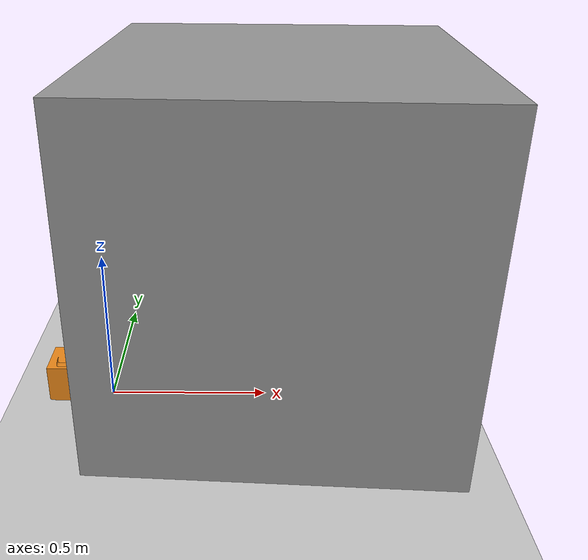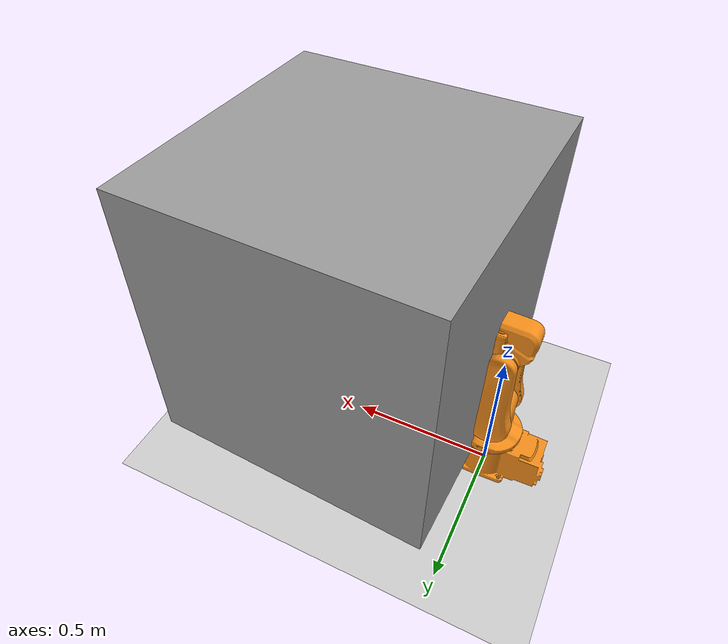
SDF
<sdf version="1.4">
 <world name="default">
  <light name="sun" type="directional">
   <pose>0 0 10 0 -0 0</pose>
   <diffuse>0.8 0.8 0.8 1</diffuse>
   <specular>0.2 0.2 0.2 1</specular>
   <attenuation>
    <range>1000</range>
    <constant>0.9</constant>
    <linear>0.01</linear>
    <quadratic>0.001</quadratic>
   </attenuation>
   <direction>-0.5 0.1 -0.9</direction>
  </light>
  <model name="ground_plane">
   <static>1</static>
   <link name="link">
    <collision name="collision">
     <geometry><plane><normal>0 0 1</normal><size>100 100</size></plane></geometry>
     <surface><friction><ode><mu>100</mu><mu2>50</mu2></ode></friction></surface>
    </collision>
    <visual name="visual">
     <cast_shadows>0</cast_shadows>
     <geometry><plane><normal>0 0 1</normal><size>100 100</size></plane></geometry>
     <material>
      <script><uri>file://media/materials/scripts/gazebo.material</uri><name>Gazebo/Grey</name></script>
     </material>
    </visual>
    <velocity_decay><linear>0</linear><angular>0</angular></velocity_decay>
   </link>
  </model>
  <physics type="ode">
   <max_step_size>0.001</max_step_size>
   <real_time_factor>1</real_time_factor>
   <real_time_update_rate>1000</real_time_update_rate>
   <gravity>0 0 -9.8</gravity>
  </physics>
  <scene><ambient>0.4 0.4 0.4 1</ambient><background>0.7 0.7 0.7 1</background><shadows>1</shadows></scene>
  <spherical_coordinates>
   <surface_model>EARTH_WGS84</surface_model>
   <latitude_deg>0</latitude_deg>
   <longitude_deg>0</longitude_deg>
   <elevation>0</elevation>
   <heading_deg>0</heading_deg>
  </spherical_coordinates>
  <model name="irb120">
   <link name="base_link">
    <inertial>
     <mass>6.215</mass>
     <inertia>
      <ixx>0.0247272</ixx>
      <ixy>-8.0784e-05</ixy>
      <ixz>0.00130902</ixz>
      <iyy>0.0491285</iyy>
      <iyz>-8.0419e-06</iyz>
      <izz>0.0472376</izz>
     </inertia>
    </inertial>
    <collision name="base_link_collision">
     <geometry>
      <mesh>
       <scale>1 1 1</scale>
       <uri>/media/jadhu/HDD/catkin_ws_1/src/modular_teleop_framework/robot_description/meshes/irb120/collision/base_link.stl</uri>
      </mesh>
     </geometry>
    </collision>
    <visual name="base_link_visual">
     <geometry>
      <mesh>
       <scale>1 1 1</scale>
       <uri>/media/jadhu/HDD/catkin_ws_1/src/modular_teleop_framework/robot_description/meshes/irb120/visual/base_link.stl</uri>
      </mesh>
     </geometry>
     <material><script><name>Gazebo/Orange</name><uri>__default__</uri></script></material>
    </visual>
    <gravity>0</gravity>
    <velocity_decay><linear>0</linear><angular>0</angular></velocity_decay>
   </link>
   <joint name="fixed" type="revolute">
    <child>base_link</child>
    <parent>world</parent>
    <axis>
     <limit><lower>0</lower><upper>0</upper></limit>
     <dynamics><damping>0</damping></dynamics>
     <xyz>0 0 1</xyz>
    </axis>
   </joint>
   <link name="link_1">
    <inertial>
     <pose>0 0 0.23841 0 -0 0</pose>
     <mass>3.067</mass>
     <inertia>
      <ixx>0.0142175</ixx>
      <ixy>-1.28579e-05</ixy>
      <ixz>-2.31364e-05</ixz>
      <iyy>0.0144041</iyy>
      <iyz>1.93404e-05</iyz>
      <izz>0.0104533</izz>
     </inertia>
    </inertial>
    <collision name="link_1_collision">
     <geometry>
      <mesh>
       <scale>1 1 1</scale>
       <uri>/media/jadhu/HDD/catkin_ws_1/src/modular_teleop_framework/robot_description/meshes/irb120/collision/link_1.stl</uri>
      </mesh>
     </geometry>
    </collision>
    <visual name="link_1_visual">
     <geometry>
      <mesh>
       <scale>1 1 1</scale>
       <uri>/media/jadhu/HDD/catkin_ws_1/src/modular_teleop_framework/robot_description/meshes/irb120/visual/link_1.stl</uri>
      </mesh>
     </geometry>
     <material><script><name>Gazebo/Orange</name><uri>__default__</uri></script></material>
    </visual>
    <gravity>0</gravity>
    <velocity_decay><linear>0</linear><angular>0</angular></velocity_decay>
   </link>
   <joint name="joint_1" type="revolute">
    <child>link_1</child>
    <parent>base_link</parent>
    <axis>
     <xyz>0 0 1</xyz>
     <limit><lower>-2.87979</lower><upper>2.87979</upper><effort>20</effort><velocity>4.36332</velocity></limit>
     <dynamics><damping>1</damping></dynamics>
    </axis>
   </joint>
   <link name="link_2">
    <pose>0 0 0.29 0 -0 0</pose>
    <inertial>
     <pose>0.00078 -0.00212 0.10124 0 -0 0</pose>
     <mass>3.909</mass>
     <inertia>
      <ixx>0.0603111</ixx>
      <ixy>9.83431e-06</ixy>
      <ixz>5.72407e-05</ixz>
      <iyy>0.041569</iyy>
      <iyz>-0.00050497</iyz>
      <izz>0.0259548</izz>
     </inertia>
    </inertial>
    <collision name="link_2_collision">
     <geometry>
      <mesh>
       <scale>1 1 1</scale>
       <uri>/media/jadhu/HDD/catkin_ws_1/src/modular_teleop_framework/robot_description/meshes/irb120/collision/link_2.stl</uri>
      </mesh>
     </geometry>
    </collision>
    <visual name="link_2_visual">
     <geometry>
      <mesh>
       <scale>1 1 1</scale>
       <uri>/media/jadhu/HDD/catkin_ws_1/src/modular_teleop_framework/robot_description/meshes/irb120/visual/link_2.stl</uri>
      </mesh>
     </geometry>
     <material><script><name>Gazebo/Orange</name><uri>__default__</uri></script></material>
    </visual>
    <gravity>0</gravity>
    <velocity_decay><linear>0</linear><angular>0</angular></velocity_decay>
   </link>
   <joint name="joint_2" type="revolute">
    <child>link_2</child>
    <parent>link_1</parent>
    <axis>
     <xyz>0 -1 0</xyz>
     <limit><lower>-1.91986</lower><upper>1.91986</upper><effort>20</effort><velocity>4.36332</velocity></limit>
     <dynamics><damping>1</damping></dynamics>
    </axis>
   </joint>
   <link name="link_3">
    <pose>0 0 0.56 0 -0 0</pose>
    <inertial>
     <pose>0.02281 0.00106 0.05791 0 -0 0</pose>
     <mass>2.944</mass>
     <inertia>
      <ixx>0.00835606</ixx>
      <ixy>-8.01545e-05</ixy>
      <ixz>0.00142884</ixz>
      <iyy>0.016713</iyy>
      <iyz>-0.000182227</iyz>
      <izz>0.0126984</izz>
     </inertia>
    </inertial>
    <collision name="link_3_collision">
     <geometry>
      <mesh>
       <scale>1 1 1</scale>
       <uri>/media/jadhu/HDD/catkin_ws_1/src/modular_teleop_framework/robot_description/meshes/irb120/collision/link_3.stl</uri>
      </mesh>
     </geometry>
    </collision>
    <visual name="link_3_visual">
     <geometry>
      <mesh>
       <scale>1 1 1</scale>
       <uri>/media/jadhu/HDD/catkin_ws_1/src/modular_teleop_framework/robot_description/meshes/irb120/visual/link_3.stl</uri>
      </mesh>
     </geometry>
     <material><script><name>Gazebo/Orange</name><uri>__default__</uri></script></material>
    </visual>
    <gravity>0</gravity>
    <velocity_decay><linear>0</linear><angular>0</angular></velocity_decay>
   </link>
   <joint name="joint_3" type="revolute">
    <child>link_3</child>
    <parent>link_2</parent>
    <axis>
     <xyz>0 -1 0</xyz>
     <limit><lower>-1.91986</lower><upper>1.22173</upper><effort>20</effort><velocity>4.36332</velocity></limit>
     <dynamics><damping>1</damping></dynamics>
    </axis>
   </joint>
   <link name="link_4">
    <pose>0 0 0.63 0 -0 0</pose>
    <inertial>
     <pose>0.2247 0.00015 0.00041 0 -0 0</pose>
     <mass>0.1328</mass>
     <inertia>
      <ixx>0.00284661</ixx>
      <ixy>-2.12765e-05</ixy>
      <ixz>-1.6435e-05</ixz>
      <iyy>0.00401346</iyy>
      <iyz>1.31336e-05</iyz>
      <izz>0.0052535</izz>
     </inertia>
    </inertial>
    <collision name="link_4_collision">
     <geometry>
      <mesh>
       <scale>1 1 1</scale>
       <uri>/media/jadhu/HDD/catkin_ws_1/src/modular_teleop_framework/robot_description/meshes/irb120/collision/link_4.stl</uri>
      </mesh>
     </geometry>
    </collision>
    <visual name="link_4_visual">
     <geometry>
      <mesh>
       <scale>1 1 1</scale>
       <uri>/media/jadhu/HDD/catkin_ws_1/src/modular_teleop_framework/robot_description/meshes/irb120/visual/link_4.stl</uri>
      </mesh>
     </geometry>
     <material><script><name>Gazebo/Orange</name><uri>__default__</uri></script></material>
    </visual>
    <gravity>0</gravity>
    <velocity_decay><linear>0</linear><angular>0</angular></velocity_decay>
   </link>
   <joint name="joint_4" type="revolute">
    <child>link_4</child>
    <parent>link_3</parent>
    <axis>
     <xyz>1 0 0</xyz>
     <limit><lower>-4</lower><upper>4</upper><effort>20</effort><velocity>5.58505</velocity></limit>
     <dynamics><damping>1</damping></dynamics>
    </axis>
   </joint>
   <link name="link_5">
    <pose>0.302 0 0.63 0 -0 0</pose>
    <inertial>
     <pose>-0.00109 3.68e-05 6.22e-05 0 -0 0</pose>
     <mass>0.546</mass>
     <inertia>
      <ixx>0.00284661</ixx>
      <ixy>-2.12765e-05</ixy>
      <ixz>-1.6435e-05</ixz>
      <iyy>0.00401346</iyy>
      <iyz>1.31336e-05</iyz>
      <izz>0.0052535</izz>
     </inertia>
    </inertial>
    <collision name="link_5_collision">
     <geometry>
      <mesh>
       <scale>1 1 1</scale>
       <uri>/media/jadhu/HDD/catkin_ws_1/src/modular_teleop_framework/robot_description/meshes/irb120/collision/link_5.stl</uri>
      </mesh>
     </geometry>
    </collision>
    <visual name="link_5_visual">
     <geometry>
      <mesh>
       <scale>1 1 1</scale>
       <uri>/media/jadhu/HDD/catkin_ws_1/src/modular_teleop_framework/robot_description/meshes/irb120/visual/link_5.stl</uri>
      </mesh>
     </geometry>
     <material><script><name>Gazebo/Orange</name><uri>__default__</uri></script></material>
    </visual>
    <gravity>0</gravity>
    <velocity_decay><linear>0</linear><angular>0</angular></velocity_decay>
   </link>
   <joint name="joint_5" type="revolute">
    <child>link_5</child>
    <parent>link_4</parent>
    <axis>
     <xyz>0 -1 0</xyz>
     <limit><lower>-2.0944</lower><upper>2.0944</upper><effort>20</effort><velocity>5.58505</velocity></limit>
     <dynamics><damping>1</damping></dynamics>
    </axis>
   </joint>
   <link name="link_6">
    <pose>0.374 0 0.63 0 -0 0</pose>
    <inertial>
     <pose>-0.00705948 -0.000169988 -1.3199e-06 0 -0 0</pose>
     <mass>0.13701</mass>
     <inertia>
      <ixx>0.00284761</ixx>
      <ixy>-2.12765e-05</ixy>
      <ixz>-1.6435e-05</ixz>
      <iyy>0.00401446</iyy>
      <iyz>1.31336e-05</iyz>
      <izz>0.0052545</izz>
     </inertia>
    </inertial>
    <collision name="link_6_collision">
     <geometry>
      <mesh>
       <scale>1 1 1</scale>
       <uri>/media/jadhu/HDD/catkin_ws_1/src/modular_teleop_framework/robot_description/meshes/irb120/collision/link_6.stl</uri>
      </mesh>
     </geometry>
    </collision>
    <collision name="link_6_collision_sense_link">
     <geometry><box><size>0.01 0.01 0.01</size></box></geometry>
    </collision>
    <visual name="link_6_visual">
     <geometry>
      <mesh>
       <scale>1 1 1</scale>
       <uri>/media/jadhu/HDD/catkin_ws_1/src/modular_teleop_framework/robot_description/meshes/irb120/visual/link_6.stl</uri>
      </mesh>
     </geometry>
     <material><script><name>Gazebo/Black</name><uri>__default__</uri></script></material>
    </visual>
    <visual name="link_6_visual_sense_link"><geometry><box><size>0.01 0.01 0.01</size></box></geometry></visual>
    <velocity_decay><linear>0</linear><angular>0</angular></velocity_decay>
    <velocity_decay><linear>0</linear><angular>0</angular></velocity_decay>
    <sensor name="my_contact" type="contact">
     <contact><collision>link_6_collision_sense_link</collision><topic>__default_topic__</topic></contact>
     <plugin name="sense_link_bumper" filename="libgazebo_ros_bumper.so">
      <alwaysOn>true</alwaysOn>
      <updateRate>100.0</updateRate>
      <bumperTopicName>/irb120/force_feedback</bumperTopicName>
      <frameName>world</frameName>
      <robotNamespace>/</robotNamespace>
     </plugin>
    </sensor>
   </link>
   <joint name="joint_6" type="revolute">
    <child>link_6</child>
    <parent>link_5</parent>
    <axis>
     <xyz>1 0 0</xyz>
     <limit><lower>-4</lower><upper>4</upper><effort>20</effort><velocity>7.33038</velocity></limit>
     <dynamics><damping>1</damping></dynamics>
    </axis>
    <physics>
     <provide_feedback>1</provide_feedback>
     <ode><provide_feedback>1</provide_feedback><limit><cfm>0</cfm><erp>0.2</erp></limit></ode>
    </physics>
   </joint>
   <plugin name="gazebo_ros_control" filename="libgazebo_ros_control.so">
    <robotNamespace>/irb120</robotNamespace>
    <robotSimType>gazebo_ros_control/DefaultRobotHWSim</robotSimType>
   </plugin>
   <static>0</static>
   <plugin name="ft_sensor" filename="libgazebo_ros_ft_sensor.so">
    <updateRate>100.0</updateRate>
    <topicName>ft_sensor_topic</topicName>
    <jointName>joint_6</jointName>
    <always_on>1</always_on>
    <robotNamespace>/</robotNamespace>
   </plugin>
   <pose>-0 -0 0 1e-06 -0 0</pose>
  </model>
  <model name="unit_box_1">
   <pose>0.531546 -0.025031 0.61817 -1e-06 -0 -0.050465</pose>
   <link name="link">
    <inertial>
     <mass>1</mass>
     <inertia><ixx>1</ixx><ixy>0</ixy><ixz>0</ixz><iyy>1</iyy><iyz>0</iyz><izz>1</izz></inertia>
    </inertial>
    <collision name="collision"><geometry><box><size>0.09548 0.430553 1.23634</size></box></geometry></collision>
    <visual name="visual">
     <geometry><box><size>1 1 1</size></box></geometry>
     <material>
      <script><uri>file://media/materials/scripts/gazebo.material</uri><name>Gazebo/Grey</name></script>
     </material>
    </visual>
    <velocity_decay><linear>0</linear><angular>0</angular></velocity_decay>
   </link>
   <static>0</static>
  </model>
 </world>
</sdf>
